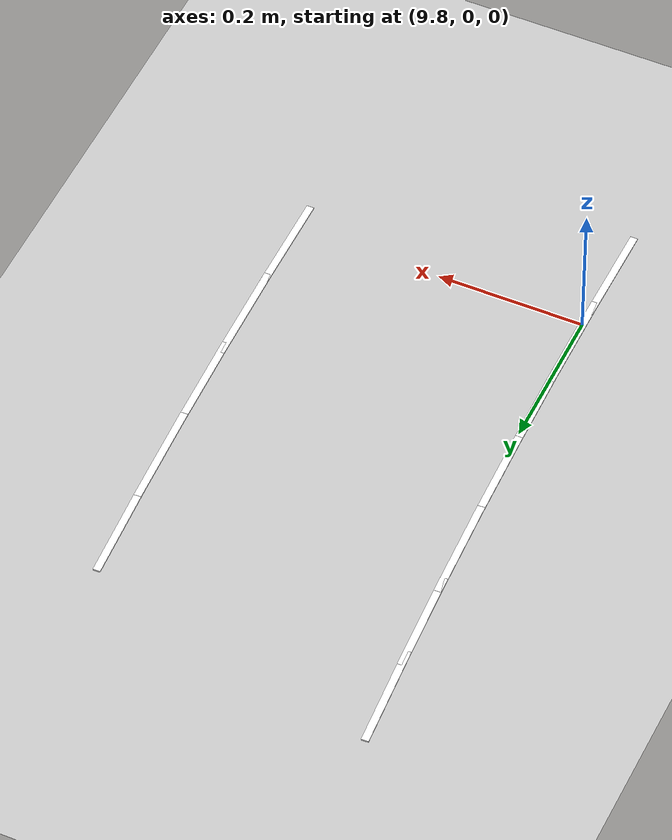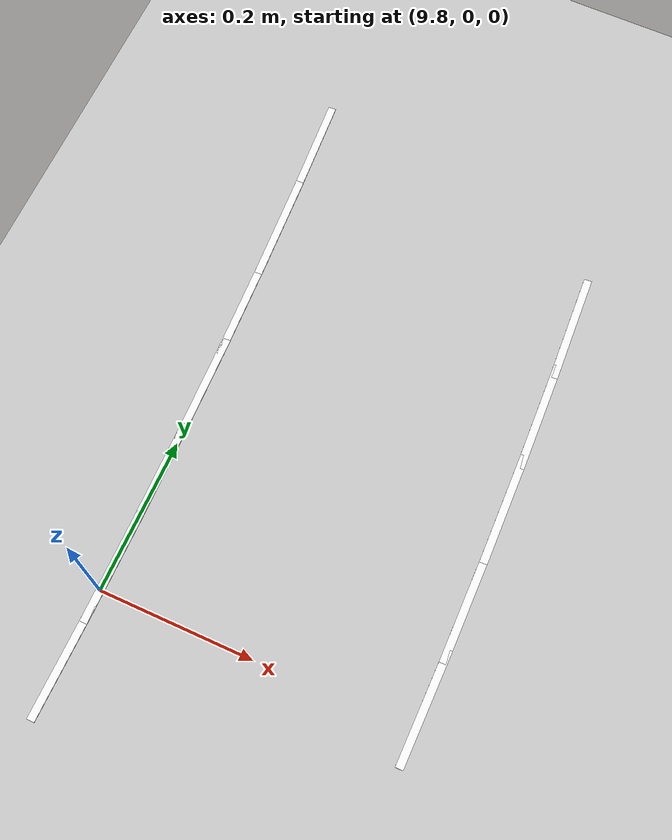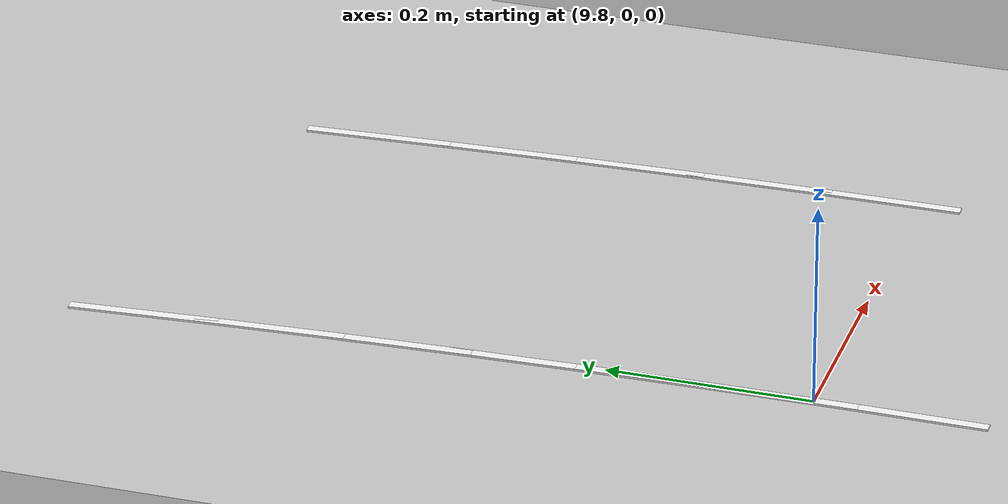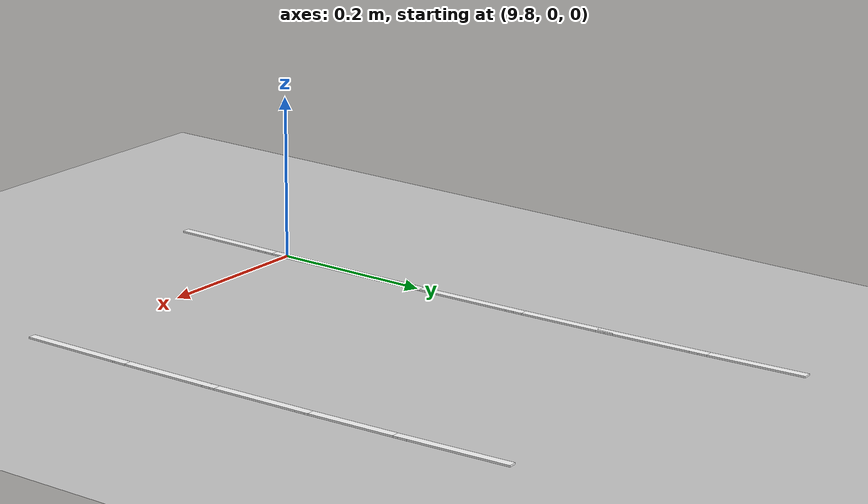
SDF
<sdf version="1.7">
 <world name="default">
  <model name="ground_plane">
   <static>1</static>
   <link name="link">
    <collision name="collision">
     <geometry><plane><normal>0 0 1</normal><size>100 100</size></plane></geometry>
     <surface>
      <contact><collide_bitmask>65535</collide_bitmask></contact>
      <friction><ode><mu>100</mu><mu2>50</mu2></ode></friction>
     </surface>
    </collision>
    <visual name="visual">
     <cast_shadows>0</cast_shadows>
     <geometry><plane><normal>0 0 1</normal><size>100 100</size></plane></geometry>
     <material>
      <script><uri>file://media/materials/scripts/gazebo.material</uri><name>Gazebo/Grey</name></script>
     </material>
    </visual>
   </link>
  </model>
  <model name="lane_line_right_119">
   <static>1</static>
   <link name="link">
    <pose>0 0 -0.004 0 -0 0</pose>
    <visual name="visual">
     <geometry><box><size>0.1451 0.01 0.01</size></box></geometry>
     <material><ambient>1 1 1 1</ambient><diffuse>1 1 1 1</diffuse></material>
    </visual>
    <collision name="collision"><geometry><box><size>0.1451 0.01 0.01</size></box></geometry></collision>
   </link>
   <pose>9.7784 0.645782 0 0 0 -1.50425</pose>
  </model>
  <model name="lane_line_left_120">
   <static>1</static>
   <link name="link">
    <pose>0 0 -0.004 0 -0 0</pose>
    <visual name="visual">
     <geometry><box><size>0.1454 0.01 0.01</size></box></geometry>
     <material><ambient>1 1 1 1</ambient><diffuse>1 1 1 1</diffuse></material>
    </visual>
    <collision name="collision"><geometry><box><size>0.1454 0.01 0.01</size></box></geometry></collision>
   </link>
   <pose>10.1852 0.544822 0 0 0 -1.51705</pose>
  </model>
  <model name="lane_line_right_120">
   <static>1</static>
   <link name="link">
    <pose>0 0 -0.004 0 -0 0</pose>
    <visual name="visual">
     <geometry><box><size>0.1454 0.01 0.01</size></box></geometry>
     <material><ambient>1 1 1 1</ambient><diffuse>1 1 1 1</diffuse></material>
    </visual>
    <collision name="collision"><geometry><box><size>0.1454 0.01 0.01</size></box></geometry></collision>
   </link>
   <pose>9.78578 0.523334 0 0 0 -1.51705</pose>
  </model>
  <model name="lane_line_left_121">
   <static>1</static>
   <link name="link">
    <pose>0 0 -0.004 0 -0 0</pose>
    <visual name="visual">
     <geometry><box><size>0.1456 0.01 0.01</size></box></geometry>
     <material><ambient>1 1 1 1</ambient><diffuse>1 1 1 1</diffuse></material>
    </visual>
    <collision name="collision"><geometry><box><size>0.1456 0.01 0.01</size></box></geometry></collision>
   </link>
   <pose>10.1913 0.416939 0 0 0 -1.52977</pose>
  </model>
  <model name="lane_line_right_121">
   <static>1</static>
   <link name="link">
    <pose>0 0 -0.004 0 -0 0</pose>
    <visual name="visual">
     <geometry><box><size>0.1456 0.01 0.01</size></box></geometry>
     <material><ambient>1 1 1 1</ambient><diffuse>1 1 1 1</diffuse></material>
    </visual>
    <collision name="collision"><geometry><box><size>0.1456 0.01 0.01</size></box></geometry></collision>
   </link>
   <pose>9.7916 0.400533 0 0 0 -1.52977</pose>
  </model>
  <model name="lane_line_left_122">
   <static>1</static>
   <link name="link">
    <pose>0 0 -0.004 0 -0 0</pose>
    <visual name="visual">
     <geometry><box><size>0.1458 0.01 0.01</size></box></geometry>
     <material><ambient>1 1 1 1</ambient><diffuse>1 1 1 1</diffuse></material>
    </visual>
    <collision name="collision"><geometry><box><size>0.1458 0.01 0.01</size></box></geometry></collision>
   </link>
   <pose>10.1957 0.288808 0 0 0 -1.54243</pose>
  </model>
  <model name="lane_line_right_122">
   <static>1</static>
   <link name="link">
    <pose>0 0 -0.004 0 -0 0</pose>
    <visual name="visual">
     <geometry><box><size>0.1458 0.01 0.01</size></box></geometry>
     <material><ambient>1 1 1 1</ambient><diffuse>1 1 1 1</diffuse></material>
    </visual>
    <collision name="collision"><geometry><box><size>0.1458 0.01 0.01</size></box></geometry></collision>
   </link>
   <pose>9.79587 0.277464 0 0 0 -1.54243</pose>
  </model>
  <model name="lane_line_left_123">
   <static>1</static>
   <link name="link">
    <pose>0 0 -0.004 0 -0 0</pose>
    <visual name="visual">
     <geometry><box><size>0.1459 0.01 0.01</size></box></geometry>
     <material><ambient>1 1 1 1</ambient><diffuse>1 1 1 1</diffuse></material>
    </visual>
    <collision name="collision"><geometry><box><size>0.1459 0.01 0.01</size></box></geometry></collision>
   </link>
   <pose>10.1985 0.160505 0 0 0 -1.55505</pose>
  </model>
  <model name="lane_line_right_123">
   <static>1</static>
   <link name="link">
    <pose>0 0 -0.004 0 -0 0</pose>
    <visual name="visual">
     <geometry><box><size>0.1459 0.01 0.01</size></box></geometry>
     <material><ambient>1 1 1 1</ambient><diffuse>1 1 1 1</diffuse></material>
    </visual>
    <collision name="collision"><geometry><box><size>0.1459 0.01 0.01</size></box></geometry></collision>
   </link>
   <pose>9.79859 0.154207 0 0 0 -1.55505</pose>
  </model>
  <model name="lane_line_left_124">
   <static>1</static>
   <link name="link">
    <pose>0 0 -0.004 0 -0 0</pose>
    <visual name="visual">
     <geometry><box><size>0.1459 0.01 0.01</size></box></geometry>
     <material><ambient>1 1 1 1</ambient><diffuse>1 1 1 1</diffuse></material>
    </visual>
    <collision name="collision"><geometry><box><size>0.1459 0.01 0.01</size></box></geometry></collision>
   </link>
   <pose>10.1998 0.032106 0 0 0 -1.56765</pose>
  </model>
  <model name="lane_line_right_124">
   <static>1</static>
   <link name="link">
    <pose>0 0 -0.004 0 -0 0</pose>
    <visual name="visual">
     <geometry><box><size>0.1459 0.01 0.01</size></box></geometry>
     <material><ambient>1 1 1 1</ambient><diffuse>1 1 1 1</diffuse></material>
    </visual>
    <collision name="collision"><geometry><box><size>0.1459 0.01 0.01</size></box></geometry></collision>
   </link>
   <pose>9.79975 0.030847 0 0 0 -1.56765</pose>
  </model>
  <model name="lane_line_right_125">
   <static>1</static>
   <link name="link">
    <pose>0 0 -0.004 0 -0 0</pose>
    <visual name="visual">
     <geometry><box><size>0.1459 0.01 0.01</size></box></geometry>
     <material><ambient>1 1 1 1</ambient><diffuse>1 1 1 1</diffuse></material>
    </visual>
    <collision name="collision"><geometry><box><size>0.1459 0.01 0.01</size></box></geometry></collision>
   </link>
   <pose>9.79936 -0.092535 0 0 0 -1.58024</pose>
  </model>
 </world>
</sdf>
